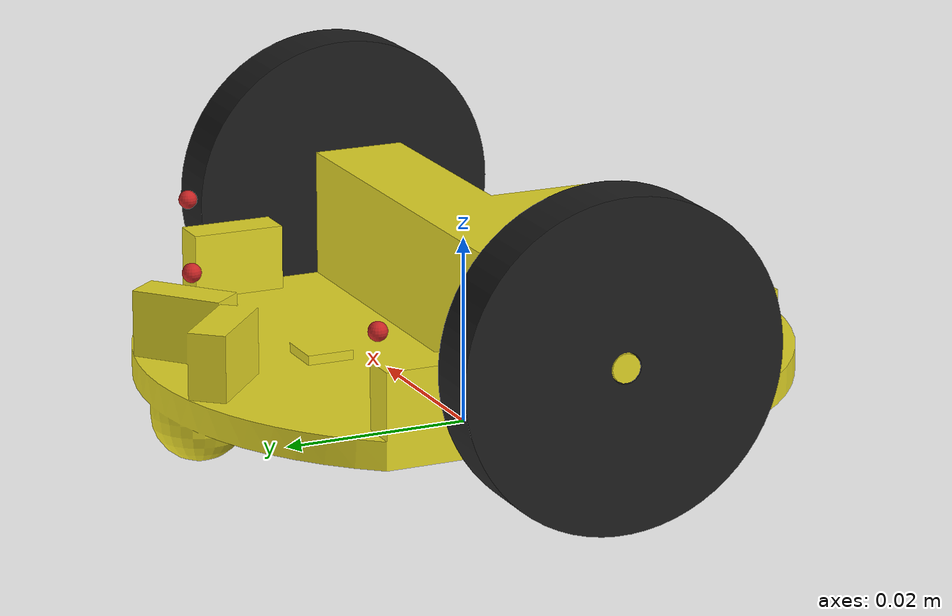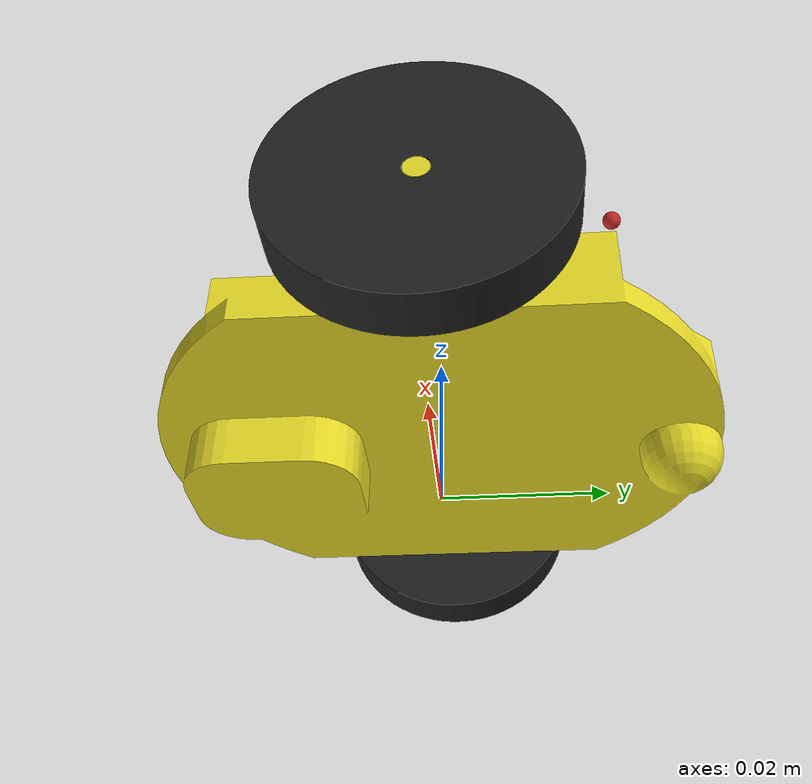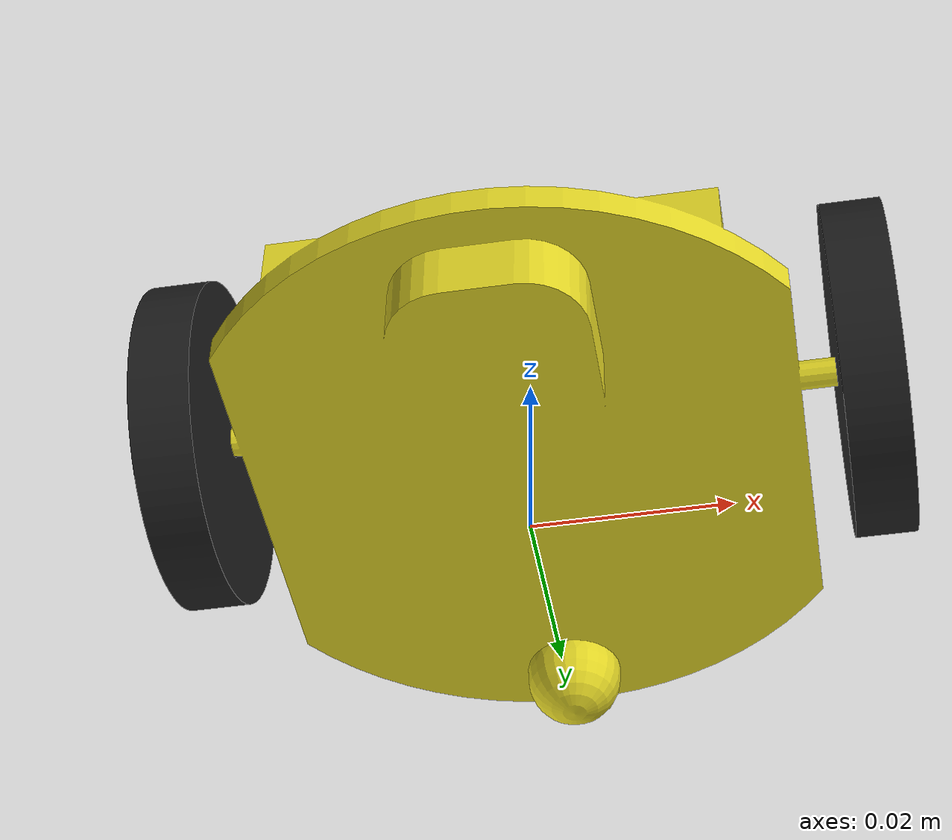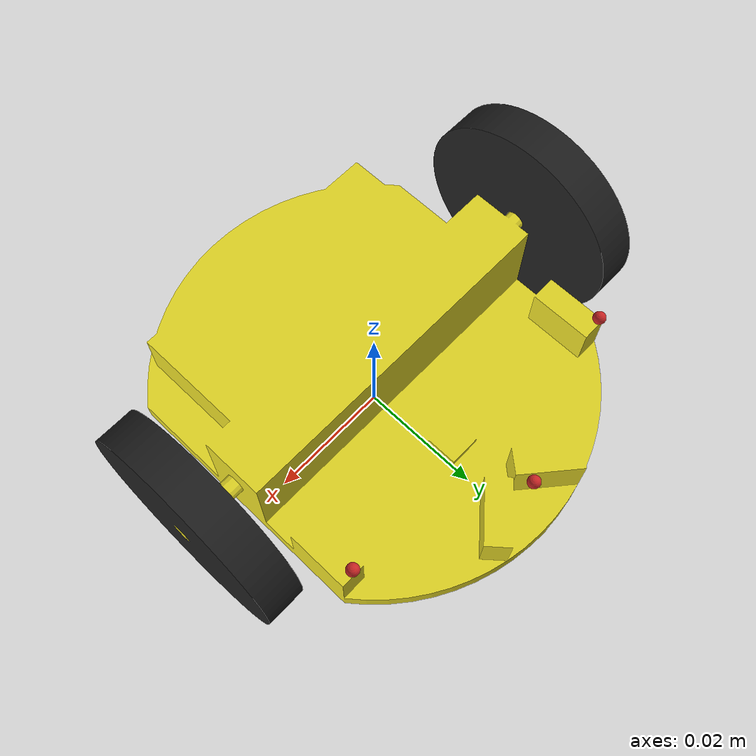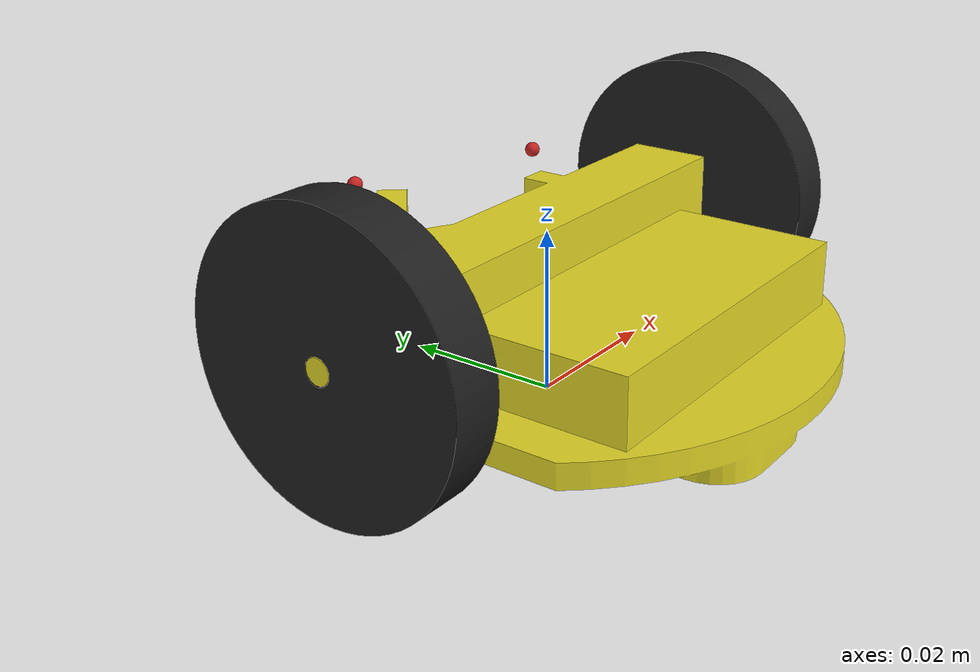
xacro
<?xml version="1.0" ?>
<robot name="mouse" xmlns:xacro="http://www.ros.org/wiki/xacro">
	<xacro:property name="wheel_sep" value="0.069"/>
	<xacro:property name="wheel_dia" value="0.034"/>
	<xacro:property name="wheel_torque" value="0.015"/>
	<xacro:property name="wheel_veloc" value="105"/>

	<xacro:property name="ir_max" value="0.2"/>

	<link name="base_link">
		<visual>
			<geometry>
				<mesh filename="package://mouse_description/meshes/mouse_base.dae" scale="1 1 1"/>
			</geometry>
		</visual>

		<collision name="base_link_collision">
			<geometry>
				<mesh filename="package://mouse_description/meshes/mouse_base.dae" scale="1 1 1"/>
			</geometry>
		</collision>

		<inertial>
			<origin xyz="0 -0.004502 0.011265" rpy="0 0 0"/>
			<mass value="0.077"/>
			<inertia
        		ixx="1.956e-5" ixy="3.869e-18" ixz="0.0"
        		iyy="1.775e-5" iyz="2.795e-7"
        		izz="3.367e-5"/>
		</inertial>
	</link>

	<!-- Actuation -->
	<link name="left_wheel">
		<visual>
			<geometry>
				<mesh filename="package://mouse_description/meshes/mouse_wheel.dae" scale="1 1 1"/>
			</geometry>
		</visual>

		<collision name="left_wheel_collision">
			<geometry>
				<mesh filename="package://mouse_description/meshes/mouse_wheel.dae" scale="1 1 1"/>
			</geometry>
		</collision>

		<inertial>
			<mass value="0.015"/>
			<inertia
        		ixx="2.196e-6" ixy="0.0" ixz="0.0"
        		iyy="1.146e-6" iyz="0.0"
        		izz="1.146e-6"/>
		</inertial>
	</link>

	<link name="right_wheel">
		<visual>
			<geometry>
				<mesh filename="package://mouse_description/meshes/mouse_wheel.dae" scale="1 1 1"/>
			</geometry>
		</visual>

		<collision name="right_wheel_collision">
			<geometry>
				<mesh filename="package://mouse_description/meshes/mouse_wheel.dae" scale="1 1 1"/>
			</geometry>
		</collision>

		<inertial>
			<mass value="0.015"/>
			<inertia
        		ixx="2.196e-6" ixy="0.0" ixz="0.0"
        		iyy="1.146e-6" iyz="0.0"
        		izz="1.146e-6"/>
		</inertial>
	</link>

	<joint name="left_mot" type="continuous">
		<parent link="base_link"/>
		<child link="left_wheel"/>
		<origin xyz="${wheel_sep/2} 0 ${wheel_dia/2}" rpy="0 0 0"/>
		<axis xyz="-1 0 0"/>
		<dynamics friction="0.01"/>
		<limit effort="${wheel_torque}" velocity="${wheel_veloc}"/>
	</joint>

	<joint name="right_mot" type="continuous">
		<parent link="base_link"/>
		<child link="right_wheel"/>
		<origin xyz="${-wheel_sep/2} 0 ${wheel_dia/2}" rpy="0 0 0"/>
		<axis xyz="-1 0 0"/>
		<dynamics friction="0.01"/>
		<limit effort="${wheel_torque}" velocity="${wheel_veloc}"/>
	</joint>

	<gazebo reference="base_link">
		<mu1>0.1</mu1>
		<mu2>0.1</mu2>
		<kp>1000000.0</kp>
		<kd>100.0</kd>
		<minDepth>0.0001</minDepth>
		<maxVel>1.0</maxVel>
		<material>Gazebo/Yellow</material>
	</gazebo>

	<gazebo reference="left_wheel">
		<mu1>1000.0</mu1>
		<mu2>1000.0</mu2>
		<kp>1000000.0</kp>
		<kd>100.0</kd>
		<minDepth>0.0001</minDepth>
		<maxVel>1.0</maxVel>
		<material>Gazebo/Black</material>
	</gazebo>

	<gazebo reference="right_wheel">
		<mu1>1000.0</mu1>
		<mu2>1000.0</mu2>
		<kp>1000000.0</kp>
		<kd>100.0</kd>
		<minDepth>0.0001</minDepth>
		<maxVel>1.0</maxVel>
		<material>Gazebo/Black</material>
	</gazebo>

	<!-- Gazebo Actuation -->
	<gazebo>
		<plugin name="differential_drive_controller" filename="libgazebo_ros_diff_drive.so">
			<rosDebugLevel>0</rosDebugLevel>
			<alwaysOn>true</alwaysOn>
			<updateRate>120</updateRate>

			<leftJoint>right_mot</leftJoint>
			<rightJoint>left_mot</rightJoint>

			<wheelAcceleration>0</wheelAcceleration>
			<wheelSeparation>${wheel_sep}</wheelSeparation>
			<wheelDiameter>${wheel_dia}</wheelDiameter>
			<wheelTorque>${wheel_torque}</wheelTorque>

			<commandTopic>cmd_vel</commandTopic>
			<odometryTopic>odom</odometryTopic>

			<!-- world == perfect positioning -->
			<odometrySource>world</odometrySource>

			<odometryFrame>map</odometryFrame>
			<robotBaseFrame>base</robotBaseFrame>

			<publishTf>1</publishTf>
			<publishWheelTF>false</publishWheelTF>
			<publishOdomTF>true</publishOdomTF>
			<publishWheelJointState>false</publishWheelJointState>
		</plugin>
	</gazebo>

	<!-- Sensors -->
	<link name="left_ir">
		<visual>
			<geometry>
				<sphere radius="0.001"/>
			</geometry>
		</visual>

		<inertial>
			<mass value="1e-5"/>
			<inertia
				ixx="1e-6" ixy="0.0" ixz="0.0"
				iyy="1e-6" iyz="0.0"
				izz="1e-6"/>
		</inertial>
	</link>

	<joint name="left_ir_mnt" type="fixed">
		<origin xyz="-0.0256 0.0207 0.020" rpy="0 0 3.14159265359"/>
		<parent link="base_link"/>
		<child link="left_ir"/>
	</joint>

	<gazebo reference="left_ir">
		<material>Gazebo/Red</material>
		<sensor type="ray" name="left_ir_sens">
			<pose>0 0 0 0 0 0</pose>
			<visualize>true</visualize>
			<update_rate>30</update_rate>
			<ray>
				<scan>
					<horizontal>
						<samples>3</samples>
						<resolution>1</resolution>
						<min_angle>-0.03</min_angle>
						<max_angle>0.03</max_angle>
					</horizontal>
				</scan>
				<range>
					<min>0.001</min>
					<max>${ir_max}</max>
					<resolution>0.001</resolution>
				</range>
			</ray>
			<plugin filename="libgazebo_ros_laser.so" name="gazebo_ros_laser">
				<topicName>laser</topicName>
				<frameName>left_ir</frameName>
			</plugin>
		</sensor>
	</gazebo>

	<link name="right_ir">
		<visual>
			<geometry>
				<sphere radius="0.001"/>
			</geometry>
		</visual>

		<inertial>
			<mass value="1e-5"/>
			<inertia
				ixx="1e-6" ixy="0.0" ixz="0.0"
				iyy="1e-6" iyz="0.0"
				izz="1e-6"/>
		</inertial>
	</link>

	<joint name="right_ir_mnt" type="fixed">
		<origin xyz="0.0256 0.0207 0.020" rpy="0 0 0"/>
		<parent link="base_link"/>
		<child link="right_ir"/>
	</joint>

	<gazebo reference="right_ir">
		<material>Gazebo/Red</material>
		<sensor type="ray" name="right_ir_sens">
			<pose>0 0 0 0 0 0</pose>
			<visualize>true</visualize>
			<update_rate>30</update_rate>
			<ray>
				<scan>
					<horizontal>
						<samples>3</samples>
						<resolution>1</resolution>
						<min_angle>-0.03</min_angle>
						<max_angle>0.03</max_angle>
					</horizontal>
				</scan>
				<range>
					<min>0.001</min>
					<max>${ir_max}</max>
					<resolution>0.001</resolution>
				</range>
			</ray>
			<plugin filename="libgazebo_ros_laser.so" name="gazebo_ros_laser">
				<topicName>laser</topicName>
				<frameName>right_ir</frameName>
			</plugin>
		</sensor>
	</gazebo>

	<link name="center_ir">
		<visual>
			<geometry>
				<sphere radius="0.001"/>
			</geometry>
		</visual>

		<inertial>
			<mass value="1e-5"/>
			<inertia
				ixx="1e-6" ixy="0.0" ixz="0.0"
				iyy="1e-6" iyz="0.0"
				izz="1e-6"/>
		</inertial>
	</link>

	<joint name="center_ir_mnt" type="fixed">
		<origin xyz="0 0.03 0.020" rpy="0 0 1.57079632679"/>
		<parent link="base_link"/>
		<child link="center_ir"/>
	</joint>

	<gazebo reference="center_ir">
		<material>Gazebo/Red</material>
		<sensor type="ray" name="center_ir_sens">
			<pose>0 0 0 0 0 0</pose>
			<visualize>true</visualize>
			<update_rate>30</update_rate>
			<ray>
				<scan>
					<horizontal>
						<samples>3</samples>
						<resolution>1</resolution>
						<min_angle>-0.03</min_angle>
						<max_angle>0.03</max_angle>
					</horizontal>
				</scan>
				<range>
					<min>0.001</min>
					<max>${ir_max}</max>
					<resolution>0.001</resolution>
				</range>
			</ray>
			<plugin filename="libgazebo_ros_laser.so" name="gazebo_ros_laser">
				<topicName>laser</topicName>
				<frameName>center_ir</frameName>
			</plugin>
		</sensor>
	</gazebo>
</robot>
